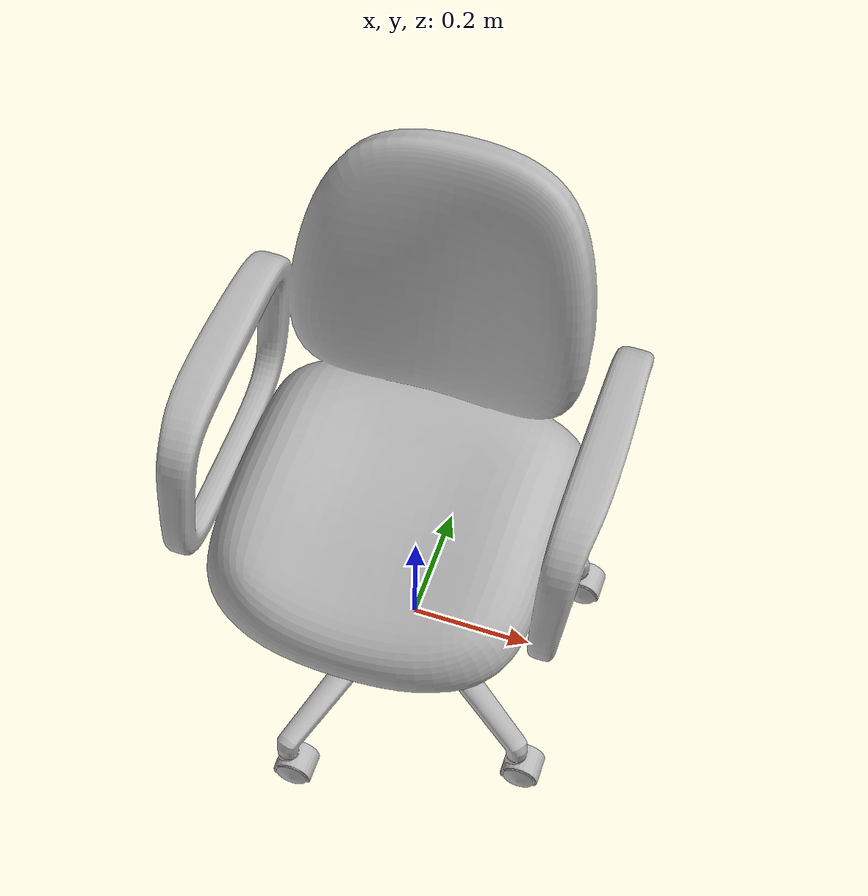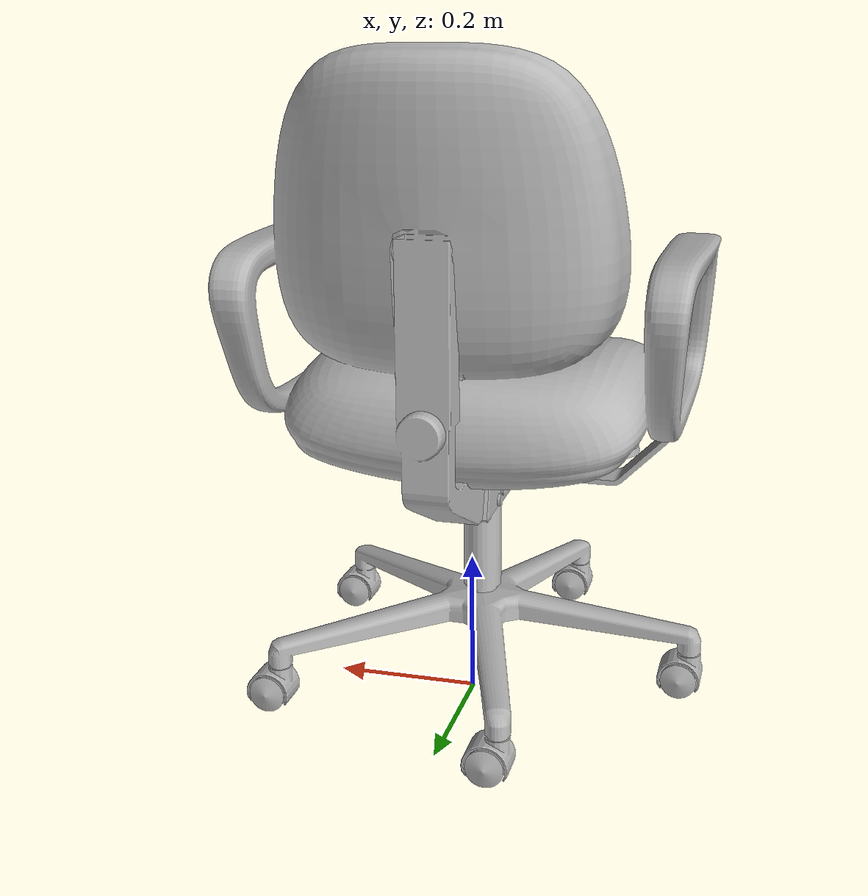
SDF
<?xml version="1.0" ?>
<sdf version="1.0">
  <model name="swivel_chair">
    <static>true</static>
    <link name="swivel_chair">
      <collision name="swivel_chair">
        <pose>0 0 0 0 0 0</pose>
        <geometry>
          <mesh>
            <uri>model://swivel_chair/meshes/model.dae</uri>
          </mesh>
        </geometry>
      </collision>

      <visual name="swivel_chair_mesh">
	  <cast_shadows>true</cast_shadows>
        <geometry>
          <mesh>
	        <uri>model://swivel_chair/meshes/model.dae</uri>
	      </mesh>
        </geometry>
	<material>
          <script>
            <uri>model://swivel_chair/materials/scripts</uri>
            <uri>model://swivel_chair/materials/textures</uri>
            <name>Swivel_chair/Fabric</name>
          </script>
        </material>
      </visual>
    </link>
  </model>
</sdf>
